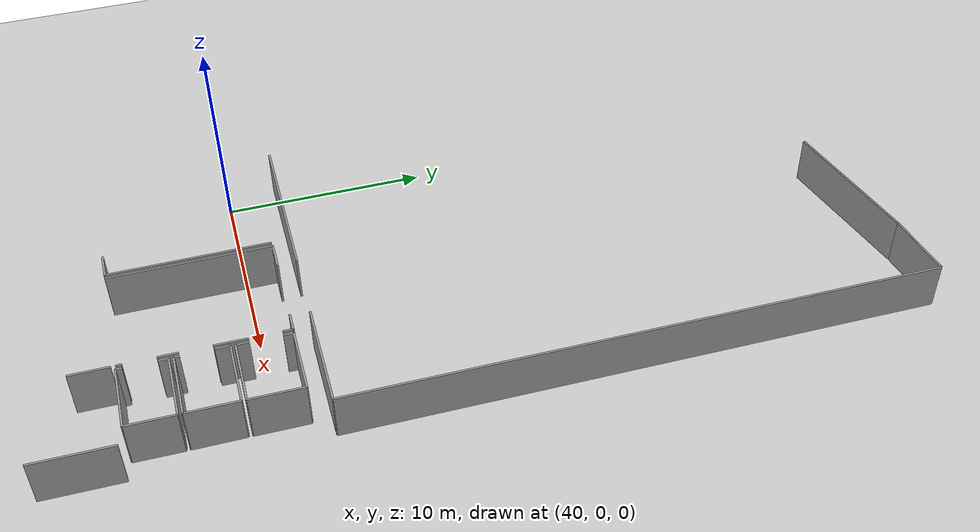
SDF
<sdf version="1.6">
 <world name="default">
  <model name="ground_plane">
   <static>1</static>
   <link name="link">
    <collision name="collision">
     <geometry><plane><normal>0 0 1</normal><size>100 100</size></plane></geometry>
     <surface><friction><ode><mu>100</mu><mu2>50</mu2></ode></friction></surface>
    </collision>
    <visual name="visual">
     <cast_shadows>0</cast_shadows>
     <geometry><plane><normal>0 0 1</normal><size>100 100</size></plane></geometry>
     <material>
      <script><uri>file://media/materials/scripts/gazebo.material</uri><name>Gazebo/Grey</name></script>
     </material>
    </visual>
   </link>
  </model>
  <model name="0510032216_A-40">
   <static>1</static>
   <link name="Wall_109">
    <collision name="Wall_109_Collision">
     <geometry><box><size>1.96159583585 0.1 2.5</size></box></geometry>
     <pose>0.980797917923 0 1.25 0 0 0</pose>
    </collision>
    <visual name="Wall_109_Visual">
     <pose>0.980797917923 0 1.25 0 0 0</pose>
     <geometry><box><size>1.96159583585 0.1 2.5</size></box></geometry>
     <material>
      <script><uri>file://media/materials/scripts/gazebo.material</uri><name>Gazebo/Grey</name></script>
      <ambient>1 1 1 1</ambient>
     </material>
    </visual>
    <pose>120.807439617 -38.7602374076 0 0 0 -1.57079632679</pose>
   </link>
   <link name="Wall_172">
    <collision name="Wall_172_Collision">
     <geometry><box><size>1.29355381344 0.1 2.5</size></box></geometry>
     <pose>0.646776906719 0 1.25 0 0 0</pose>
    </collision>
    <visual name="Wall_172_Visual">
     <pose>0.646776906719 0 1.25 0 0 0</pose>
     <geometry><box><size>1.29355381344 0.1 2.5</size></box></geometry>
     <material>
      <script><uri>file://media/materials/scripts/gazebo.material</uri><name>Gazebo/Grey</name></script>
      <ambient>1 1 1 1</ambient>
     </material>
    </visual>
    <pose>114.818929127 -38.532224585 0 0 0 3.14159265359</pose>
   </link>
   <link name="Wall_176">
    <collision name="Wall_176_Collision">
     <geometry><box><size>7.99965286936 0.1 2.5</size></box></geometry>
     <pose>3.99982643468 0 1.25 0 0 0</pose>
    </collision>
    <visual name="Wall_176_Visual">
     <pose>3.99982643468 0 1.25 0 0 0</pose>
     <geometry><box><size>7.99965286936 0.1 2.5</size></box></geometry>
     <material>
      <script><uri>file://media/materials/scripts/gazebo.material</uri><name>Gazebo/Grey</name></script>
      <ambient>1 1 1 1</ambient>
     </material>
    </visual>
    <pose>114.795696194 -30.5326054528 0 0 0 -1.56789208015</pose>
   </link>
   <link name="Wall_205">
    <collision name="Wall_205_Collision">
     <geometry><box><size>3.91482925568 0.1 2.5</size></box></geometry>
     <pose>1.95741462784 0 1.25 0 0 0</pose>
    </collision>
    <visual name="Wall_205_Visual">
     <pose>1.95741462784 0 1.25 0 0 0</pose>
     <geometry><box><size>3.91482925568 0.1 2.5</size></box></geometry>
     <material>
      <script><uri>file://media/materials/scripts/gazebo.material</uri><name>Gazebo/Grey</name></script>
      <ambient>1 1 1 1</ambient>
     </material>
    </visual>
    <pose>125.398165487 -38.8426317961 0 0 0 -1.573714985</pose>
   </link>
   <link name="Wall_206">
    <collision name="Wall_206_Collision">
     <geometry><box><size>0.285523851842 0.1 2.5</size></box></geometry>
     <pose>0.142761925921 0 1.25 0 0 0</pose>
    </collision>
    <visual name="Wall_206_Visual">
     <pose>0.142761925921 0 1.25 0 0 0</pose>
     <geometry><box><size>0.285523851842 0.1 2.5</size></box></geometry>
     <material>
      <script><uri>file://media/materials/scripts/gazebo.material</uri><name>Gazebo/Grey</name></script>
      <ambient>1 1 1 1</ambient>
     </material>
    </visual>
    <pose>120.798552703 -38.5503792808 0 0 0 1.57079632679</pose>
   </link>
   <link name="Wall_207">
    <collision name="Wall_207_Collision">
     <geometry><box><size>0.985050941061 0.1 2.5</size></box></geometry>
     <pose>0.49252547053 0 1.25 0 0 0</pose>
    </collision>
    <visual name="Wall_207_Visual">
     <pose>0.49252547053 0 1.25 0 0 0</pose>
     <geometry><box><size>0.985050941061 0.1 2.5</size></box></geometry>
     <material>
      <script><uri>file://media/materials/scripts/gazebo.material</uri><name>Gazebo/Grey</name></script>
      <ambient>1 1 1 1</ambient>
     </material>
    </visual>
    <pose>120.798552703 -36.7201828165 0 0 0 1.57079632679</pose>
   </link>
   <link name="Wall_208">
    <collision name="Wall_208_Collision">
     <geometry><box><size>1.61272098264 0.1 2.5</size></box></geometry>
     <pose>0.806360491319 0 1.25 0 0 0</pose>
    </collision>
    <visual name="Wall_208_Visual">
     <pose>0.806360491319 0 1.25 0 0 0</pose>
     <geometry><box><size>1.61272098264 0.1 2.5</size></box></geometry>
     <material>
      <script><uri>file://media/materials/scripts/gazebo.material</uri><name>Gazebo/Grey</name></script>
      <ambient>1 1 1 1</ambient>
     </material>
    </visual>
    <pose>120.798552703 -34.1850001587 0 0 0 1.57079632679</pose>
   </link>
   <link name="Wall_209">
    <collision name="Wall_209_Collision">
     <geometry><box><size>0.485733329101 0.1 2.5</size></box></geometry>
     <pose>0.242866664551 0 1.25 0 0 0</pose>
    </collision>
    <visual name="Wall_209_Visual">
     <pose>0.242866664551 0 1.25 0 0 0</pose>
     <geometry><box><size>0.485733329101 0.1 2.5</size></box></geometry>
     <material>
      <script><uri>file://media/materials/scripts/gazebo.material</uri><name>Gazebo/Grey</name></script>
      <ambient>1 1 1 1</ambient>
     </material>
    </visual>
    <pose>120.798552703 -30.9992953947 0 0 0 1.57079632679</pose>
   </link>
   <link name="Wall_210">
    <collision name="Wall_210_Collision">
     <geometry><box><size>0.9635953915 0.1 2.5</size></box></geometry>
     <pose>0.48179769575 0 1.25 0 0 0</pose>
    </collision>
    <visual name="Wall_210_Visual">
     <pose>0.48179769575 0 1.25 0 0 0</pose>
     <geometry><box><size>0.9635953915 0.1 2.5</size></box></geometry>
     <material>
      <script><uri>file://media/materials/scripts/gazebo.material</uri><name>Gazebo/Grey</name></script>
      <ambient>1 1 1 1</ambient>
     </material>
    </visual>
    <pose>120.798552703 -30.5135620656 0 0 0 3.14159265359</pose>
   </link>
   <link name="Wall_211">
    <collision name="Wall_211_Collision">
     <geometry><box><size>1.40248198813 0.1 2.5</size></box></geometry>
     <pose>0.701240994065 0 1.25 0 0 0</pose>
    </collision>
    <visual name="Wall_211_Visual">
     <pose>0.701240994065 0 1.25 0 0 0</pose>
     <geometry><box><size>1.40248198813 0.1 2.5</size></box></geometry>
     <material>
      <script><uri>file://media/materials/scripts/gazebo.material</uri><name>Gazebo/Grey</name></script>
      <ambient>1 1 1 1</ambient>
     </material>
    </visual>
    <pose>116.439140508 -30.5135620656 0 0 0 3.14159265359</pose>
   </link>
   <link name="Wall_212">
    <collision name="Wall_212_Collision">
     <geometry><box><size>8.03682070579 0.1 2.5</size></box></geometry>
     <pose>4.01841035289 0 1.25 0 0 0</pose>
    </collision>
    <visual name="Wall_212_Visual">
     <pose>4.01841035289 0 1.25 0 0 0</pose>
     <geometry><box><size>8.03682070579 0.1 2.5</size></box></geometry>
     <material>
      <script><uri>file://media/materials/scripts/gazebo.material</uri><name>Gazebo/Grey</name></script>
      <ambient>1 1 1 1</ambient>
     </material>
    </visual>
    <pose>115.03665852 -30.5135620656 0 0 0 -1.56986431645</pose>
   </link>
   <link name="Wall_213">
    <collision name="Wall_213_Collision">
     <geometry><box><size>3.37194909068 0.1 2.5</size></box></geometry>
     <pose>1.68597454534 0 1.25 0 0 0</pose>
    </collision>
    <visual name="Wall_213_Visual">
     <pose>1.68597454534 0 1.25 0 0 0</pose>
     <geometry><box><size>3.37194909068 0.1 2.5</size></box></geometry>
     <material>
      <script><uri>file://media/materials/scripts/gazebo.material</uri><name>Gazebo/Grey</name></script>
      <ambient>1 1 1 1</ambient>
     </material>
    </visual>
    <pose>124.407909353 -33.2057891897 0 0 0 3.14159265359</pose>
   </link>
   <link name="Wall_214">
    <collision name="Wall_214_Collision">
     <geometry><box><size>0.637953470657 0.1 2.5</size></box></geometry>
     <pose>0.318976735329 0 1.25 0 0 0</pose>
    </collision>
    <visual name="Wall_214_Visual">
     <pose>0.318976735329 0 1.25 0 0 0</pose>
     <geometry><box><size>0.637953470657 0.1 2.5</size></box></geometry>
     <material>
      <script><uri>file://media/materials/scripts/gazebo.material</uri><name>Gazebo/Grey</name></script>
      <ambient>1 1 1 1</ambient>
     </material>
    </visual>
    <pose>121.035960263 -33.2057891897 0 0 0 1.57079632679</pose>
   </link>
   <link name="Wall_215">
    <collision name="Wall_215_Collision">
     <geometry><box><size>0.479131621544 0.1 2.5</size></box></geometry>
     <pose>0.239565810772 0 1.25 0 0 0</pose>
    </collision>
    <visual name="Wall_215_Visual">
     <pose>0.239565810772 0 1.25 0 0 0</pose>
     <geometry><box><size>0.479131621544 0.1 2.5</size></box></geometry>
     <material>
      <script><uri>file://media/materials/scripts/gazebo.material</uri><name>Gazebo/Grey</name></script>
      <ambient>1 1 1 1</ambient>
     </material>
    </visual>
    <pose>121.035960263 -31.0169422668 0 0 0 1.57079632679</pose>
   </link>
   <link name="Wall_216">
    <collision name="Wall_216_Collision">
     <geometry><box><size>3.37702732726 0.1 2.5</size></box></geometry>
     <pose>1.68851366363 0 1.25 0 0 0</pose>
    </collision>
    <visual name="Wall_216_Visual">
     <pose>1.68851366363 0 1.25 0 0 0</pose>
     <geometry><box><size>3.37702732726 0.1 2.5</size></box></geometry>
     <material>
      <script><uri>file://media/materials/scripts/gazebo.material</uri><name>Gazebo/Grey</name></script>
      <ambient>1 1 1 1</ambient>
     </material>
    </visual>
    <pose>121.035960263 -30.5378106453 0 0 0 0.0</pose>
   </link>
   <link name="Wall_217">
    <collision name="Wall_217_Collision">
     <geometry><box><size>2.66798337741 0.1 2.5</size></box></geometry>
     <pose>1.3339916887 0 1.25 0 0 0</pose>
    </collision>
    <visual name="Wall_217_Visual">
     <pose>1.3339916887 0 1.25 0 0 0</pose>
     <geometry><box><size>2.66798337741 0.1 2.5</size></box></geometry>
     <material>
      <script><uri>file://media/materials/scripts/gazebo.material</uri><name>Gazebo/Grey</name></script>
      <ambient>1 1 1 1</ambient>
     </material>
    </visual>
    <pose>124.41298759 -30.5378106453 0 0 0 -1.57269972683</pose>
   </link>
   <link name="Wall_218">
    <collision name="Wall_218_Collision">
     <geometry><box><size>3.39607071444 0.1 2.5</size></box></geometry>
     <pose>1.69803535722 0 1.25 0 0 0</pose>
    </collision>
    <visual name="Wall_218_Visual">
     <pose>1.69803535722 0 1.25 0 0 0</pose>
     <geometry><box><size>3.39607071444 0.1 2.5</size></box></geometry>
     <material>
      <script><uri>file://media/materials/scripts/gazebo.material</uri><name>Gazebo/Grey</name></script>
      <ambient>1 1 1 1</ambient>
     </material>
    </visual>
    <pose>124.41298759 -35.9964071476 0 0 0 3.14159265359</pose>
   </link>
   <link name="Wall_219">
    <collision name="Wall_219_Collision">
     <geometry><box><size>0.275748246421 0.1 2.5</size></box></geometry>
     <pose>0.137874123211 0 1.25 0 0 0</pose>
    </collision>
    <visual name="Wall_219_Visual">
     <pose>0.137874123211 0 1.25 0 0 0</pose>
     <geometry><box><size>0.275748246421 0.1 2.5</size></box></geometry>
     <material>
      <script><uri>file://media/materials/scripts/gazebo.material</uri><name>Gazebo/Grey</name></script>
      <ambient>1 1 1 1</ambient>
     </material>
    </visual>
    <pose>121.016916876 -35.9964071476 0 0 0 1.57079632679</pose>
   </link>
   <link name="Wall_220">
    <collision name="Wall_220_Collision">
     <geometry><box><size>0.717935696829 0.1 2.5</size></box></geometry>
     <pose>0.358967848415 0 1.25 0 0 0</pose>
    </collision>
    <visual name="Wall_220_Visual">
     <pose>0.358967848415 0 1.25 0 0 0</pose>
     <geometry><box><size>0.717935696829 0.1 2.5</size></box></geometry>
     <material>
      <script><uri>file://media/materials/scripts/gazebo.material</uri><name>Gazebo/Grey</name></script>
      <ambient>1 1 1 1</ambient>
     </material>
    </visual>
    <pose>121.016916876 -34.1490716349 0 0 0 1.57079632679</pose>
   </link>
   <link name="Wall_221">
    <collision name="Wall_221_Collision">
     <geometry><box><size>3.38591424128 0.1 2.5</size></box></geometry>
     <pose>1.69295712064 0 1.25 0 0 0</pose>
    </collision>
    <visual name="Wall_221_Visual">
     <pose>1.69295712064 0 1.25 0 0 0</pose>
     <geometry><box><size>3.38591424128 0.1 2.5</size></box></geometry>
     <material>
      <script><uri>file://media/materials/scripts/gazebo.material</uri><name>Gazebo/Grey</name></script>
      <ambient>1 1 1 1</ambient>
     </material>
    </visual>
    <pose>121.016916876 -33.431135938 0 0 0 0.0</pose>
   </link>
   <link name="Wall_222">
    <collision name="Wall_222_Collision">
     <geometry><box><size>2.56529131535 0.1 2.5</size></box></geometry>
     <pose>1.28264565767 0 1.25 0 0 0</pose>
    </collision>
    <visual name="Wall_222_Visual">
     <pose>1.28264565767 0 1.25 0 0 0</pose>
     <geometry><box><size>2.56529131535 0.1 2.5</size></box></geometry>
     <material>
      <script><uri>file://media/materials/scripts/gazebo.material</uri><name>Gazebo/Grey</name></script>
      <ambient>1 1 1 1</ambient>
     </material>
    </visual>
    <pose>124.402831117 -33.431135938 0 0 0 -1.56683712745</pose>
   </link>
   <link name="Wall_223">
    <collision name="Wall_223_Collision">
     <geometry><box><size>3.37702732726 0.1 2.5</size></box></geometry>
     <pose>1.68851366363 0 1.25 0 0 0</pose>
    </collision>
    <visual name="Wall_223_Visual">
     <pose>1.68851366363 0 1.25 0 0 0</pose>
     <geometry><box><size>3.37702732726 0.1 2.5</size></box></geometry>
     <material>
      <script><uri>file://media/materials/scripts/gazebo.material</uri><name>Gazebo/Grey</name></script>
      <ambient>1 1 1 1</ambient>
     </material>
    </visual>
    <pose>124.406639794 -38.5893547466 0 0 0 3.14159265359</pose>
   </link>
   <link name="Wall_224">
    <collision name="Wall_224_Collision">
     <geometry><box><size>0.315612403593 0.1 2.5</size></box></geometry>
     <pose>0.157806201796 0 1.25 0 0 0</pose>
    </collision>
    <visual name="Wall_224_Visual">
     <pose>0.157806201796 0 1.25 0 0 0</pose>
     <geometry><box><size>0.315612403593 0.1 2.5</size></box></geometry>
     <material>
      <script><uri>file://media/materials/scripts/gazebo.material</uri><name>Gazebo/Grey</name></script>
      <ambient>1 1 1 1</ambient>
     </material>
    </visual>
    <pose>121.029612467 -38.5893547466 0 0 0 1.57079632679</pose>
   </link>
   <link name="Wall_225">
    <collision name="Wall_225_Collision">
     <geometry><box><size>0.480020312946 0.1 2.5</size></box></geometry>
     <pose>0.240010156473 0 1.25 0 0 0</pose>
    </collision>
    <visual name="Wall_225_Visual">
     <pose>0.240010156473 0 1.25 0 0 0</pose>
     <geometry><box><size>0.480020312946 0.1 2.5</size></box></geometry>
     <material>
      <script><uri>file://media/materials/scripts/gazebo.material</uri><name>Gazebo/Grey</name></script>
      <ambient>1 1 1 1</ambient>
     </material>
    </visual>
    <pose>121.029612467 -36.6904751325 0 0 0 1.57079632679</pose>
   </link>
   <link name="Wall_226">
    <collision name="Wall_226_Collision">
     <geometry><box><size>3.38718380043 0.1 2.5</size></box></geometry>
     <pose>1.69359190021 0 1.25 0 0 0</pose>
    </collision>
    <visual name="Wall_226_Visual">
     <pose>1.69359190021 0 1.25 0 0 0</pose>
     <geometry><box><size>3.38718380043 0.1 2.5</size></box></geometry>
     <material>
      <script><uri>file://media/materials/scripts/gazebo.material</uri><name>Gazebo/Grey</name></script>
      <ambient>1 1 1 1</ambient>
     </material>
    </visual>
    <pose>121.029612467 -36.2104548196 0 0 0 0.0</pose>
   </link>
   <link name="Wall_227">
    <collision name="Wall_227_Collision">
     <geometry><box><size>2.37892160792 0.1 2.5</size></box></geometry>
     <pose>1.18946080396 0 1.25 0 0 0</pose>
    </collision>
    <visual name="Wall_227_Visual">
     <pose>1.18946080396 0 1.25 0 0 0</pose>
     <geometry><box><size>2.37892160792 0.1 2.5</size></box></geometry>
     <material>
      <script><uri>file://media/materials/scripts/gazebo.material</uri><name>Gazebo/Grey</name></script>
      <ambient>1 1 1 1</ambient>
     </material>
    </visual>
    <pose>124.416796267 -36.2104548196 0 0 0 -1.57506569994</pose>
   </link>
   <link name="Wall_228">
    <collision name="Wall_228_Collision">
     <geometry><box><size>5.51369536928 0.1 2.5</size></box></geometry>
     <pose>2.75684768464 0 1.25 0 0 0</pose>
    </collision>
    <visual name="Wall_228_Visual">
     <pose>2.75684768464 0 1.25 0 0 0</pose>
     <geometry><box><size>5.51369536928 0.1 2.5</size></box></geometry>
     <material>
      <script><uri>file://media/materials/scripts/gazebo.material</uri><name>Gazebo/Grey</name></script>
      <ambient>1 1 1 1</ambient>
     </material>
    </visual>
    <pose>125.419747993 -29.5691370172 0 0 0 3.14159265359</pose>
   </link>
   <link name="Wall_229">
    <collision name="Wall_229_Collision">
     <geometry><box><size>8.14054019742 0.1 2.5</size></box></geometry>
     <pose>4.07027009871 0 1.25 0 0 0</pose>
    </collision>
    <visual name="Wall_229_Visual">
     <pose>4.07027009871 0 1.25 0 0 0</pose>
     <geometry><box><size>8.14054019742 0.1 2.5</size></box></geometry>
     <material>
      <script><uri>file://media/materials/scripts/gazebo.material</uri><name>Gazebo/Grey</name></script>
      <ambient>1 1 1 1</ambient>
     </material>
    </visual>
    <pose>116.353572222 -29.5691370172 0 0 0 3.14159265359</pose>
   </link>
   <link name="Wall_232">
    <collision name="Wall_232_Collision">
     <geometry><box><size>7.35417145026 0.1 2.5</size></box></geometry>
     <pose>3.67708572513 0 1.25 0 0 0</pose>
    </collision>
    <visual name="Wall_232_Visual">
     <pose>3.67708572513 0 1.25 0 0 0</pose>
     <geometry><box><size>7.35417145026 0.1 2.5</size></box></geometry>
     <material>
      <script><uri>file://media/materials/scripts/gazebo.material</uri><name>Gazebo/Grey</name></script>
      <ambient>1 1 1 1</ambient>
     </material>
    </visual>
    <pose>114.900815692 -2.38660615101 0 0 0 0.250777580686</pose>
   </link>
   <link name="Wall_233">
    <collision name="Wall_233_Collision">
     <geometry><box><size>3.44219516734 0.1 2.5</size></box></geometry>
     <pose>1.72109758367 0 1.25 0 0 0</pose>
    </collision>
    <visual name="Wall_233_Visual">
     <pose>1.72109758367 0 1.25 0 0 0</pose>
     <geometry><box><size>3.44219516734 0.1 2.5</size></box></geometry>
     <material>
      <script><uri>file://media/materials/scripts/gazebo.material</uri><name>Gazebo/Grey</name></script>
      <ambient>1 1 1 1</ambient>
     </material>
    </visual>
    <pose>122.024946837 -0.561614879233 0 0 0 0.163888701498</pose>
   </link>
   <link name="Wall_234">
    <collision name="Wall_234_Collision">
     <geometry><box><size>29.5691370444 0.1 2.5</size></box></geometry>
     <pose>14.7845685222 0 1.25 0 0 0</pose>
    </collision>
    <visual name="Wall_234_Visual">
     <pose>14.7845685222 0 1.25 0 0 0</pose>
     <geometry><box><size>29.5691370444 0.1 2.5</size></box></geometry>
     <material>
      <script><uri>file://media/materials/scripts/gazebo.material</uri><name>Gazebo/Grey</name></script>
      <ambient>1 1 1 1</ambient>
     </material>
    </visual>
    <pose>125.421017552 -0.0 0 0 0 -1.57083926207</pose>
   </link>
   <pose>-69.25 32.0461944965 0 0 0 0</pose>
  </model>
 </world>
</sdf>
